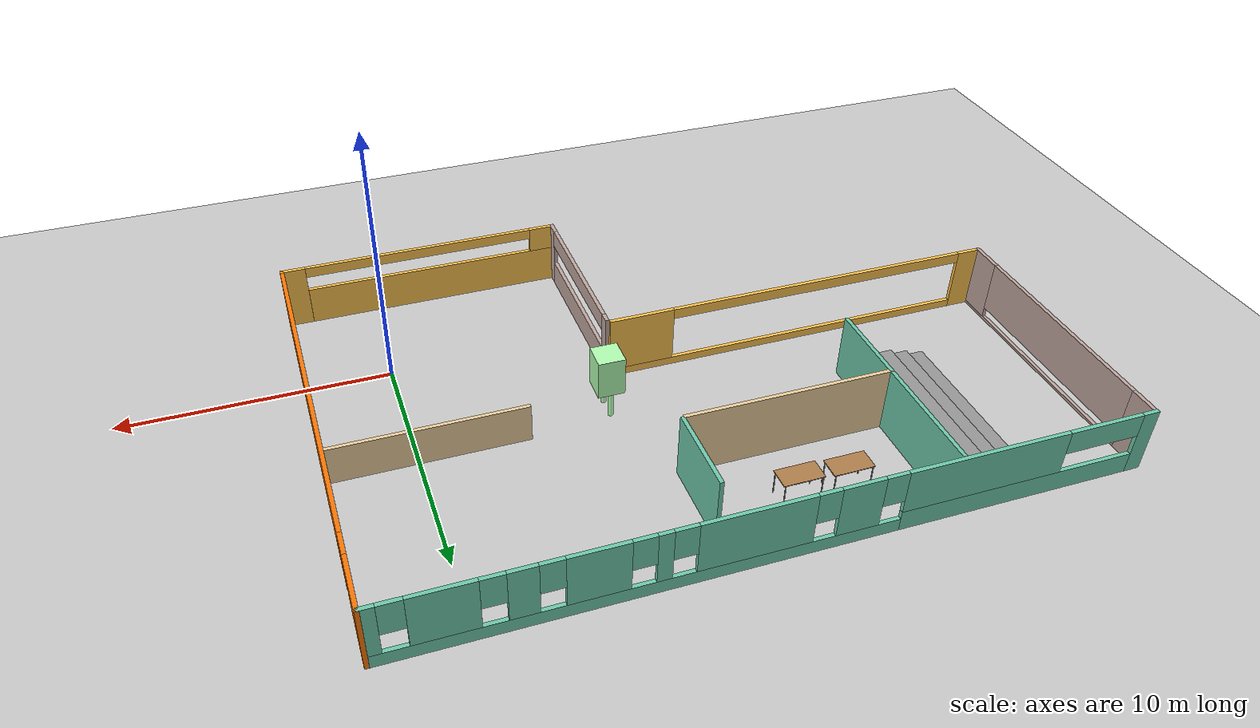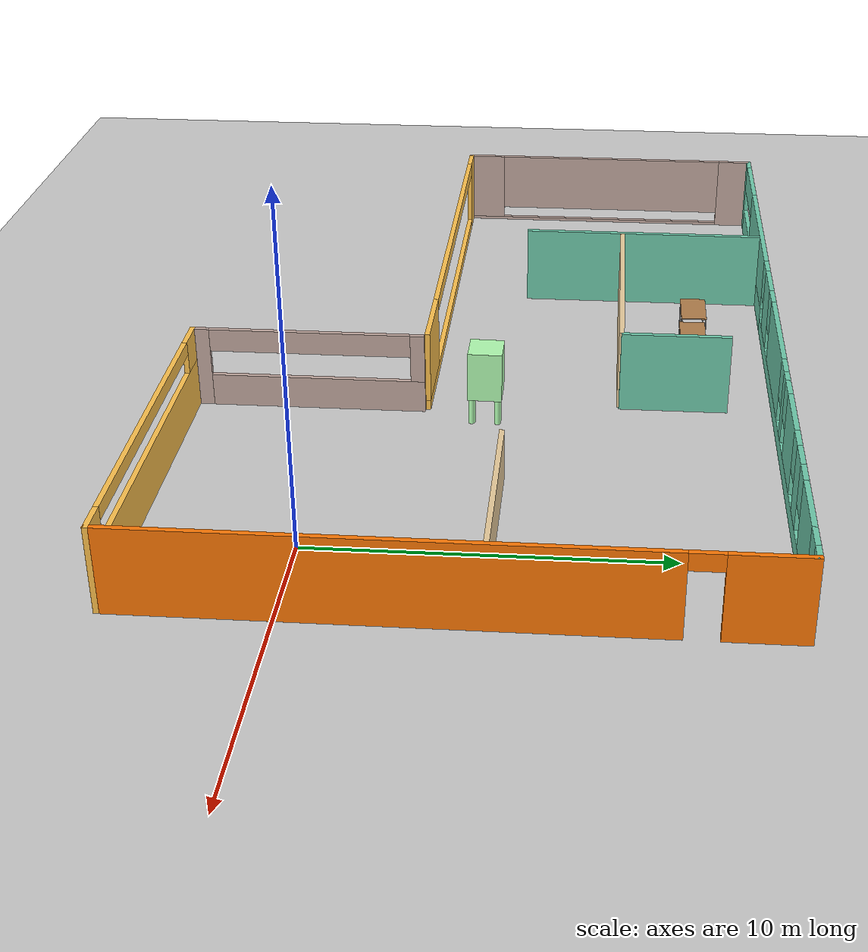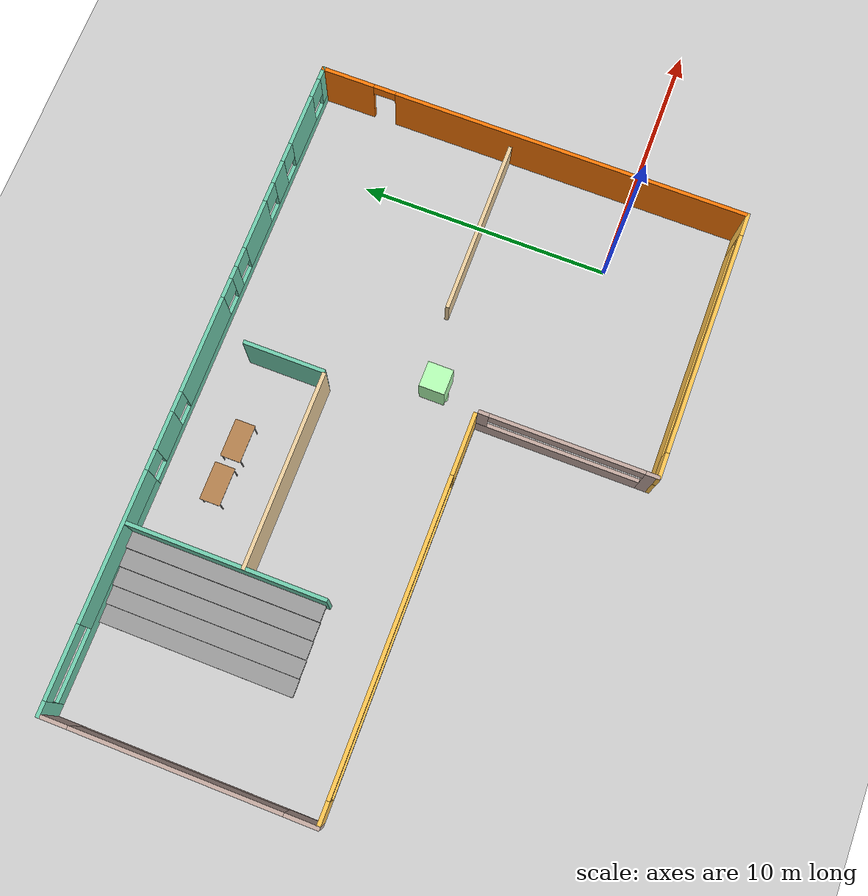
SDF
<sdf version="1.6">
 <world name="default">
  <model name="ground_plane">
   <static>1</static>
   <link name="link">
    <collision name="collision">
     <geometry><plane><normal>0 0 1</normal><size>100 100</size></plane></geometry>
     <surface><friction><ode><mu>100</mu><mu2>50</mu2></ode></friction></surface>
    </collision>
    <visual name="visual">
     <cast_shadows>0</cast_shadows>
     <geometry><plane><normal>0 0 1</normal><size>100 100</size></plane></geometry>
     <material>
      <script><uri>file://media/materials/scripts/gazebo.material</uri><name>Gazebo/Grey</name></script>
     </material>
    </visual>
   </link>
  </model>
  <model name="MyOffice">
   <pose>-9.99386 4.31006 0 0 -0 0</pose>
   <link name="Stairs_1">
    <visual name="Stairs_1_Visual_0">
     <pose>-9.15396 4.81263 0.1 0 -0 1.5708</pose>
     <geometry><box><size>7.73533 0.7 0.2</size></box></geometry>
     <material>
      <script><uri>file://media/materials/scripts/gazebo.material</uri><name>Gazebo/Grey</name></script>
      <ambient>1 1 1 1</ambient>
     </material>
     <meta><layer>0</layer></meta>
    </visual>
    <collision name="Stairs_1_Collision_0">
     <geometry><box><size>7.73533 0.7 0.2</size></box></geometry>
     <pose>-9.15396 4.81263 0.1 0 -0 1.5708</pose>
    </collision>
    <visual name="Stairs_1_Visual_1">
     <pose>-8.45396 4.81263 0.3 0 -0 1.5708</pose>
     <geometry><box><size>7.73533 0.7 0.2</size></box></geometry>
     <material>
      <script><uri>file://media/materials/scripts/gazebo.material</uri><name>Gazebo/Grey</name></script>
      <ambient>1 1 1 1</ambient>
     </material>
     <meta><layer>0</layer></meta>
    </visual>
    <collision name="Stairs_1_Collision_1">
     <geometry><box><size>7.73533 0.7 0.2</size></box></geometry>
     <pose>-8.45396 4.81263 0.3 0 -0 1.5708</pose>
    </collision>
    <visual name="Stairs_1_Visual_2">
     <pose>-7.75396 4.81263 0.5 0 -0 1.5708</pose>
     <geometry><box><size>7.73533 0.7 0.2</size></box></geometry>
     <material>
      <script><uri>file://media/materials/scripts/gazebo.material</uri><name>Gazebo/Grey</name></script>
      <ambient>1 1 1 1</ambient>
     </material>
     <meta><layer>0</layer></meta>
    </visual>
    <collision name="Stairs_1_Collision_2">
     <geometry><box><size>7.73533 0.7 0.2</size></box></geometry>
     <pose>-7.75396 4.81263 0.5 0 -0 1.5708</pose>
    </collision>
    <visual name="Stairs_1_Visual_3">
     <pose>-7.05396 4.81263 0.7 0 -0 1.5708</pose>
     <geometry><box><size>7.73533 0.7 0.2</size></box></geometry>
     <material>
      <script><uri>file://media/materials/scripts/gazebo.material</uri><name>Gazebo/Grey</name></script>
      <ambient>1 1 1 1</ambient>
     </material>
     <meta><layer>0</layer></meta>
    </visual>
    <collision name="Stairs_1_Collision_3">
     <geometry><box><size>7.73533 0.7 0.2</size></box></geometry>
     <pose>-7.05396 4.81263 0.7 0 -0 1.5708</pose>
    </collision>
    <visual name="Stairs_1_Visual_4">
     <pose>-6.35396 4.81263 0.9 0 -0 1.5708</pose>
     <geometry><box><size>7.73533 0.7 0.2</size></box></geometry>
     <material>
      <script><uri>file://media/materials/scripts/gazebo.material</uri><name>Gazebo/Grey</name></script>
      <ambient>1 1 1 1</ambient>
     </material>
     <meta><layer>0</layer></meta>
    </visual>
    <collision name="Stairs_1_Collision_4">
     <geometry><box><size>7.73533 0.7 0.2</size></box></geometry>
     <pose>-6.35396 4.81263 0.9 0 -0 1.5708</pose>
    </collision>
   </link>
   <link name="Wall_1">
    <pose>-13.175 3.5 0 0 0 -1.5708</pose>
    <visual name="Wall_1_Visual_0">
     <pose>-4.66054 0 1.25 0 -0 0</pose>
     <geometry><box><size>1.17891 0.15 2.5</size></box></geometry>
     <material>
      <script><uri>file://media/materials/scripts/gazebo.material</uri><name>Gazebo/Grey</name></script>
      <ambient>0.760784 0.662745 0.627451 1</ambient>
     </material>
     <meta><layer>0</layer></meta>
    </visual>
    <collision name="Wall_1_Collision_0">
     <geometry><box><size>1.17891 0.15 2.5</size></box></geometry>
     <pose>-4.66054 0 1.25 0 -0 0</pose>
    </collision>
    <visual name="Wall_1_Visual_1">
     <pose>0.589456 0 0.05 0 -0 0</pose>
     <geometry><box><size>9.32109 0.15 0.1</size></box></geometry>
     <material>
      <script><uri>file://media/materials/scripts/gazebo.material</uri><name>Gazebo/Grey</name></script>
      <ambient>0.760784 0.662745 0.627451 1</ambient>
     </material>
     <meta><layer>0</layer></meta>
    </visual>
    <collision name="Wall_1_Collision_1">
     <geometry><box><size>9.32109 0.15 0.1</size></box></geometry>
     <pose>0.589456 0 0.05 0 -0 0</pose>
    </collision>
    <visual name="Wall_1_Visual_2">
     <pose>4.58946 0 1.3 0 -0 0</pose>
     <geometry><box><size>1.32109 0.15 2.4</size></box></geometry>
     <material>
      <script><uri>file://media/materials/scripts/gazebo.material</uri><name>Gazebo/Grey</name></script>
      <ambient>0.760784 0.662745 0.627451 1</ambient>
     </material>
     <meta><layer>0</layer></meta>
    </visual>
    <collision name="Wall_1_Collision_2">
     <geometry><box><size>1.32109 0.15 2.4</size></box></geometry>
     <pose>4.58946 0 1.3 0 -0 0</pose>
    </collision>
    <visual name="Wall_1_Visual_3">
     <pose>-0.071087 0 1.5 0 -0 0</pose>
     <geometry><box><size>8 0.15 2</size></box></geometry>
     <material>
      <script><uri>file://media/materials/scripts/gazebo.material</uri><name>Gazebo/Grey</name></script>
      <ambient>0.760784 0.662745 0.627451 1</ambient>
     </material>
     <meta><layer>0</layer></meta>
    </visual>
    <collision name="Wall_1_Collision_3">
     <geometry><box><size>8 0.15 2</size></box></geometry>
     <pose>-0.071087 0 1.5 0 -0 0</pose>
    </collision>
   </link>
   <link name="Wall_11">
    <collision name="Wall_11_Collision">
     <geometry><box><size>7.75 0.15 2.5</size></box></geometry>
     <pose>0 0 1.25 0 -0 0</pose>
    </collision>
    <visual name="Wall_11_Visual">
     <pose>0 0 1.25 0 -0 0</pose>
     <geometry><box><size>7.75 0.15 2.5</size></box></geometry>
     <material>
      <script><uri>file://media/materials/scripts/gazebo.material</uri><name>Gazebo/Grey</name></script>
      <ambient>0.921569 0.807843 0.615686 1</ambient>
     </material>
     <meta><layer>0</layer></meta>
    </visual>
    <pose>-2.18392 4.03899 0 0 -0 0</pose>
   </link>
   <link name="Wall_13">
    <collision name="Wall_13_Collision">
     <geometry><box><size>7.25 0.15 1.5</size></box></geometry>
     <pose>0 0 0.75 0 -0 0</pose>
    </collision>
    <visual name="Wall_13_Visual">
     <pose>0 0 0.75 0 -0 0</pose>
     <geometry><box><size>7.25 0.15 1.5</size></box></geometry>
     <material>
      <script><uri>file://media/materials/scripts/gazebo.material</uri><name>Gazebo/Grey</name></script>
      <ambient>0.921569 0.807843 0.615686 1</ambient>
     </material>
     <meta><layer>0</layer></meta>
    </visual>
    <pose>9.60987 0.795259 0 0 -0 3.14159</pose>
   </link>
   <link name="Wall_15">
    <collision name="Wall_15_Collision">
     <geometry><box><size>7.75 0.15 2.5</size></box></geometry>
     <pose>0 0 1.25 0 -0 0</pose>
    </collision>
    <visual name="Wall_15_Visual">
     <pose>0 0 1.25 0 -0 0</pose>
     <geometry><box><size>7.75 0.15 2.5</size></box></geometry>
     <material>
      <script><uri>file://media/materials/scripts/gazebo.material</uri><name>Gazebo/Grey</name></script>
      <ambient>0.435294 0.796078 0.67451 1</ambient>
     </material>
     <meta><layer>0</layer></meta>
    </visual>
    <pose>-5.9943 4.72008 0 0 0 -1.5708</pose>
   </link>
   <link name="Wall_17">
    <collision name="Wall_17_Collision">
     <geometry><box><size>3.25 0.15 2.5</size></box></geometry>
     <pose>0 0 1.25 0 -0 0</pose>
    </collision>
    <visual name="Wall_17_Visual">
     <pose>0 0 1.25 0 -0 0</pose>
     <geometry><box><size>3.25 0.15 2.5</size></box></geometry>
     <material>
      <script><uri>file://media/materials/scripts/gazebo.material</uri><name>Gazebo/Grey</name></script>
      <ambient>0.435294 0.796078 0.67451 1</ambient>
     </material>
     <meta><layer>0</layer></meta>
    </visual>
    <pose>1.73138 5.6554 0 0 -0 1.5708</pose>
   </link>
   <link name="Wall_2">
    <pose>-5.5 -1.675 0 0 -0 0</pose>
    <visual name="Wall_2_Visual_0">
     <pose>-7.24406 0 1.25 0 -0 0</pose>
     <geometry><box><size>1.01187 0.15 2.5</size></box></geometry>
     <material>
      <script><uri>file://media/materials/scripts/gazebo.material</uri><name>Gazebo/Grey</name></script>
      <ambient>1 0.764706 0.305882 1</ambient>
     </material>
     <meta><layer>0</layer></meta>
    </visual>
    <collision name="Wall_2_Collision_0">
     <geometry><box><size>1.01187 0.15 2.5</size></box></geometry>
     <pose>-7.24406 0 1.25 0 -0 0</pose>
    </collision>
    <visual name="Wall_2_Visual_1">
     <pose>0.505935 0 0.15 0 -0 0</pose>
     <geometry><box><size>14.4881 0.15 0.3</size></box></geometry>
     <material>
      <script><uri>file://media/materials/scripts/gazebo.material</uri><name>Gazebo/Grey</name></script>
      <ambient>1 0.764706 0.305882 1</ambient>
     </material>
     <meta><layer>0</layer></meta>
    </visual>
    <collision name="Wall_2_Collision_1">
     <geometry><box><size>14.4881 0.15 0.3</size></box></geometry>
     <pose>0.505935 0 0.15 0 -0 0</pose>
    </collision>
    <visual name="Wall_2_Visual_2">
     <pose>6.50594 0 1.4 0 -0 0</pose>
     <geometry><box><size>2.48813 0.15 2.2</size></box></geometry>
     <material>
      <script><uri>file://media/materials/scripts/gazebo.material</uri><name>Gazebo/Grey</name></script>
      <ambient>1 0.764706 0.305882 1</ambient>
     </material>
     <meta><layer>0</layer></meta>
    </visual>
    <collision name="Wall_2_Collision_2">
     <geometry><box><size>2.48813 0.15 2.2</size></box></geometry>
     <pose>6.50594 0 1.4 0 -0 0</pose>
    </collision>
    <visual name="Wall_2_Visual_3">
     <pose>-0.738131 0 2.3 0 -0 0</pose>
     <geometry><box><size>12 0.15 0.4</size></box></geometry>
     <material>
      <script><uri>file://media/materials/scripts/gazebo.material</uri><name>Gazebo/Grey</name></script>
      <ambient>1 0.764706 0.305882 1</ambient>
     </material>
     <meta><layer>0</layer></meta>
    </visual>
    <collision name="Wall_2_Collision_3">
     <geometry><box><size>12 0.15 0.4</size></box></geometry>
     <pose>-0.738131 0 2.3 0 -0 0</pose>
    </collision>
   </link>
   <link name="Wall_4">
    <pose>0 8.675 0 0 -0 0</pose>
    <visual name="Wall_4_Visual_0">
     <pose>-12.9493 0 1.25 0 -0 0</pose>
     <geometry><box><size>0.601453 0.15 2.5</size></box></geometry>
     <material>
      <script><uri>file://media/materials/scripts/gazebo.material</uri><name>Gazebo/Grey</name></script>
      <ambient>0.435294 0.796078 0.67451 1</ambient>
     </material>
     <meta><layer>0</layer></meta>
    </visual>
    <collision name="Wall_4_Collision_0">
     <geometry><box><size>0.601453 0.15 2.5</size></box></geometry>
     <pose>-12.9493 0 1.25 0 -0 0</pose>
    </collision>
    <visual name="Wall_4_Visual_1">
     <pose>-8.30819 0 0.4 0 -0 0</pose>
     <geometry><box><size>8.68071 0.15 0.8</size></box></geometry>
     <material>
      <script><uri>file://media/materials/scripts/gazebo.material</uri><name>Gazebo/Grey</name></script>
      <ambient>0.435294 0.796078 0.67451 1</ambient>
     </material>
     <meta><layer>0</layer></meta>
    </visual>
    <collision name="Wall_4_Collision_1">
     <geometry><box><size>8.68071 0.15 0.8</size></box></geometry>
     <pose>-8.30819 0 0.4 0 -0 0</pose>
    </collision>
    <visual name="Wall_4_Visual_2">
     <pose>4.64108 0 0.25 0 -0 0</pose>
     <geometry><box><size>17.2178 0.15 0.5</size></box></geometry>
     <material>
      <script><uri>file://media/materials/scripts/gazebo.material</uri><name>Gazebo/Grey</name></script>
      <ambient>0.435294 0.796078 0.67451 1</ambient>
     </material>
     <meta><layer>0</layer></meta>
    </visual>
    <collision name="Wall_4_Collision_2">
     <geometry><box><size>17.2178 0.15 0.5</size></box></geometry>
     <pose>4.64108 0 0.25 0 -0 0</pose>
    </collision>
    <visual name="Wall_4_Visual_3">
     <pose>-2.41009 0 1.5 0 -0 0</pose>
     <geometry><box><size>1.51549 0.15 2</size></box></geometry>
     <material>
      <script><uri>file://media/materials/scripts/gazebo.material</uri><name>Gazebo/Grey</name></script>
      <ambient>0.435294 0.796078 0.67451 1</ambient>
     </material>
     <meta><layer>0</layer></meta>
    </visual>
    <collision name="Wall_4_Collision_3">
     <geometry><box><size>1.51549 0.15 2</size></box></geometry>
     <pose>-2.41009 0 1.5 0 -0 0</pose>
    </collision>
    <visual name="Wall_4_Visual_4">
     <pose>1.09786 0 1.5 0 -0 0</pose>
     <geometry><box><size>3.90042 0.15 2</size></box></geometry>
     <material>
      <script><uri>file://media/materials/scripts/gazebo.material</uri><name>Gazebo/Grey</name></script>
      <ambient>0.435294 0.796078 0.67451 1</ambient>
     </material>
     <meta><layer>0</layer></meta>
    </visual>
    <collision name="Wall_4_Collision_4">
     <geometry><box><size>3.90042 0.15 2</size></box></geometry>
     <pose>1.09786 0 1.5 0 -0 0</pose>
    </collision>
    <visual name="Wall_4_Visual_5">
     <pose>4.10318 0 1.5 0 -0 0</pose>
     <geometry><box><size>0.510201 0.15 2</size></box></geometry>
     <material>
      <script><uri>file://media/materials/scripts/gazebo.material</uri><name>Gazebo/Grey</name></script>
      <ambient>0.435294 0.796078 0.67451 1</ambient>
     </material>
     <meta><layer>0</layer></meta>
    </visual>
    <collision name="Wall_4_Collision_5">
     <geometry><box><size>0.510201 0.15 2</size></box></geometry>
     <pose>4.10318 0 1.5 0 -0 0</pose>
    </collision>
    <visual name="Wall_4_Visual_6">
     <pose>6.17414 0 1.5 0 -0 0</pose>
     <geometry><box><size>2.03172 0.15 2</size></box></geometry>
     <material>
      <script><uri>file://media/materials/scripts/gazebo.material</uri><name>Gazebo/Grey</name></script>
      <ambient>0.435294 0.796078 0.67451 1</ambient>
     </material>
     <meta><layer>0</layer></meta>
    </visual>
    <collision name="Wall_4_Collision_6">
     <geometry><box><size>2.03172 0.15 2</size></box></geometry>
     <pose>6.17414 0 1.5 0 -0 0</pose>
    </collision>
    <visual name="Wall_4_Visual_7">
     <pose>8.46963 0 1.5 0 -0 0</pose>
     <geometry><box><size>0.959263 0.15 2</size></box></geometry>
     <material>
      <script><uri>file://media/materials/scripts/gazebo.material</uri><name>Gazebo/Grey</name></script>
      <ambient>0.435294 0.796078 0.67451 1</ambient>
     </material>
     <meta><layer>0</layer></meta>
    </visual>
    <collision name="Wall_4_Collision_7">
     <geometry><box><size>0.959263 0.15 2</size></box></geometry>
     <pose>8.46963 0 1.5 0 -0 0</pose>
    </collision>
    <visual name="Wall_4_Visual_8">
     <pose>10.8153 0 1.5 0 -0 0</pose>
     <geometry><box><size>2.1321 0.15 2</size></box></geometry>
     <material>
      <script><uri>file://media/materials/scripts/gazebo.material</uri><name>Gazebo/Grey</name></script>
      <ambient>0.435294 0.796078 0.67451 1</ambient>
     </material>
     <meta><layer>0</layer></meta>
    </visual>
    <collision name="Wall_4_Collision_8">
     <geometry><box><size>2.1321 0.15 2</size></box></geometry>
     <pose>10.8153 0 1.5 0 -0 0</pose>
    </collision>
    <visual name="Wall_4_Visual_9">
     <pose>12.9657 0 1.5 0 -0 0</pose>
     <geometry><box><size>0.568637 0.15 2</size></box></geometry>
     <material>
      <script><uri>file://media/materials/scripts/gazebo.material</uri><name>Gazebo/Grey</name></script>
      <ambient>0.435294 0.796078 0.67451 1</ambient>
     </material>
     <meta><layer>0</layer></meta>
    </visual>
    <collision name="Wall_4_Collision_9">
     <geometry><box><size>0.568637 0.15 2</size></box></geometry>
     <pose>12.9657 0 1.5 0 -0 0</pose>
    </collision>
    <visual name="Wall_4_Visual_10">
     <pose>-6.90819 0 1.65 0 -0 0</pose>
     <geometry><box><size>5.88071 0.15 1.7</size></box></geometry>
     <material>
      <script><uri>file://media/materials/scripts/gazebo.material</uri><name>Gazebo/Grey</name></script>
      <ambient>0.435294 0.796078 0.67451 1</ambient>
     </material>
     <meta><layer>0</layer></meta>
    </visual>
    <collision name="Wall_4_Collision_10">
     <geometry><box><size>5.88071 0.15 1.7</size></box></geometry>
     <pose>-6.90819 0 1.65 0 -0 0</pose>
    </collision>
    <visual name="Wall_4_Visual_11">
     <pose>-1.25235 0 1.9 0 -0 0</pose>
     <geometry><box><size>0.8 0.15 1.2</size></box></geometry>
     <material>
      <script><uri>file://media/materials/scripts/gazebo.material</uri><name>Gazebo/Grey</name></script>
      <ambient>0.435294 0.796078 0.67451 1</ambient>
     </material>
     <meta><layer>0</layer></meta>
    </visual>
    <collision name="Wall_4_Collision_11">
     <geometry><box><size>0.8 0.15 1.2</size></box></geometry>
     <pose>-1.25235 0 1.9 0 -0 0</pose>
    </collision>
    <visual name="Wall_4_Visual_12">
     <pose>3.44807 0 1.9 0 -0 0</pose>
     <geometry><box><size>0.8 0.15 1.2</size></box></geometry>
     <material>
      <script><uri>file://media/materials/scripts/gazebo.material</uri><name>Gazebo/Grey</name></script>
      <ambient>0.435294 0.796078 0.67451 1</ambient>
     </material>
     <meta><layer>0</layer></meta>
    </visual>
    <collision name="Wall_4_Collision_12">
     <geometry><box><size>0.8 0.15 1.2</size></box></geometry>
     <pose>3.44807 0 1.9 0 -0 0</pose>
    </collision>
    <visual name="Wall_4_Visual_13">
     <pose>4.75828 0 1.9 0 -0 0</pose>
     <geometry><box><size>0.8 0.15 1.2</size></box></geometry>
     <material>
      <script><uri>file://media/materials/scripts/gazebo.material</uri><name>Gazebo/Grey</name></script>
      <ambient>0.435294 0.796078 0.67451 1</ambient>
     </material>
     <meta><layer>0</layer></meta>
    </visual>
    <collision name="Wall_4_Collision_13">
     <geometry><box><size>0.8 0.15 1.2</size></box></geometry>
     <pose>4.75828 0 1.9 0 -0 0</pose>
    </collision>
    <visual name="Wall_4_Visual_14">
     <pose>7.59 0 1.9 0 -0 0</pose>
     <geometry><box><size>0.8 0.15 1.2</size></box></geometry>
     <material>
      <script><uri>file://media/materials/scripts/gazebo.material</uri><name>Gazebo/Grey</name></script>
      <ambient>0.435294 0.796078 0.67451 1</ambient>
     </material>
     <meta><layer>0</layer></meta>
    </visual>
    <collision name="Wall_4_Collision_14">
     <geometry><box><size>0.8 0.15 1.2</size></box></geometry>
     <pose>7.59 0 1.9 0 -0 0</pose>
    </collision>
    <visual name="Wall_4_Visual_15">
     <pose>9.34926 0 1.9 0 -0 0</pose>
     <geometry><box><size>0.8 0.15 1.2</size></box></geometry>
     <material>
      <script><uri>file://media/materials/scripts/gazebo.material</uri><name>Gazebo/Grey</name></script>
      <ambient>0.435294 0.796078 0.67451 1</ambient>
     </material>
     <meta><layer>0</layer></meta>
    </visual>
    <collision name="Wall_4_Collision_15">
     <geometry><box><size>0.8 0.15 1.2</size></box></geometry>
     <pose>9.34926 0 1.9 0 -0 0</pose>
    </collision>
    <visual name="Wall_4_Visual_16">
     <pose>12.2814 0 1.9 0 -0 0</pose>
     <geometry><box><size>0.8 0.15 1.2</size></box></geometry>
     <material>
      <script><uri>file://media/materials/scripts/gazebo.material</uri><name>Gazebo/Grey</name></script>
      <ambient>0.435294 0.796078 0.67451 1</ambient>
     </material>
     <meta><layer>0</layer></meta>
    </visual>
    <collision name="Wall_4_Collision_16">
     <geometry><box><size>0.8 0.15 1.2</size></box></geometry>
     <pose>12.2814 0 1.9 0 -0 0</pose>
    </collision>
    <visual name="Wall_4_Visual_17">
     <pose>-3.56784 0 1.9 0 -0 0</pose>
     <geometry><box><size>0.8 0.15 1.2</size></box></geometry>
     <material>
      <script><uri>file://media/materials/scripts/gazebo.material</uri><name>Gazebo/Grey</name></script>
      <ambient>0.435294 0.796078 0.67451 1</ambient>
     </material>
     <meta><layer>0</layer></meta>
    </visual>
    <collision name="Wall_4_Collision_17">
     <geometry><box><size>0.8 0.15 1.2</size></box></geometry>
     <pose>-3.56784 0 1.9 0 -0 0</pose>
    </collision>
    <visual name="Wall_4_Visual_18">
     <pose>-11.2485 0 2.05 0 -0 0</pose>
     <geometry><box><size>2.8 0.15 0.9</size></box></geometry>
     <material>
      <script><uri>file://media/materials/scripts/gazebo.material</uri><name>Gazebo/Grey</name></script>
      <ambient>0.435294 0.796078 0.67451 1</ambient>
     </material>
     <meta><layer>0</layer></meta>
    </visual>
    <collision name="Wall_4_Collision_18">
     <geometry><box><size>2.8 0.15 0.9</size></box></geometry>
     <pose>-11.2485 0 2.05 0 -0 0</pose>
    </collision>
   </link>
   <link name="Wall_5">
    <pose>13.175 0 0 0 0 -1.5708</pose>
    <visual name="Wall_5_Visual_0">
     <pose>-7.64597 0 1.25 0 -0 0</pose>
     <geometry><box><size>2.20807 0.15 2.5</size></box></geometry>
     <material>
      <script><uri>file://media/materials/scripts/gazebo.material</uri><name>Gazebo/Grey</name></script>
      <ambient>0.996078 0.47451 0.0196078 1</ambient>
     </material>
     <meta><layer>0</layer></meta>
    </visual>
    <collision name="Wall_5_Collision_0">
     <geometry><box><size>2.20807 0.15 2.5</size></box></geometry>
     <pose>-7.64597 0 1.25 0 -0 0</pose>
    </collision>
    <visual name="Wall_5_Visual_1">
     <pose>1.55403 0 1.25 0 -0 0</pose>
     <geometry><box><size>14.3919 0.15 2.5</size></box></geometry>
     <material>
      <script><uri>file://media/materials/scripts/gazebo.material</uri><name>Gazebo/Grey</name></script>
      <ambient>0.996078 0.47451 0.0196078 1</ambient>
     </material>
     <meta><layer>0</layer></meta>
    </visual>
    <collision name="Wall_5_Collision_1">
     <geometry><box><size>14.3919 0.15 2.5</size></box></geometry>
     <pose>1.55403 0 1.25 0 -0 0</pose>
    </collision>
    <visual name="Wall_5_Visual_2">
     <pose>-6.09193 0 2.25 0 -0 0</pose>
     <geometry><box><size>0.9 0.15 0.5</size></box></geometry>
     <material>
      <script><uri>file://media/materials/scripts/gazebo.material</uri><name>Gazebo/Grey</name></script>
      <ambient>0.996078 0.47451 0.0196078 1</ambient>
     </material>
     <meta><layer>0</layer></meta>
    </visual>
    <collision name="Wall_5_Collision_2">
     <geometry><box><size>0.9 0.15 0.5</size></box></geometry>
     <pose>-6.09193 0 2.25 0 -0 0</pose>
    </collision>
   </link>
   <link name="Wall_7">
    <pose>7.75 -8.675 0 0 -0 3.14159</pose>
    <visual name="Wall_7_Visual_0">
     <pose>-5.02514 0 1.25 0 -0 0</pose>
     <geometry><box><size>0.949727 0.15 2.5</size></box></geometry>
     <material>
      <script><uri>file://media/materials/scripts/gazebo.material</uri><name>Gazebo/Grey</name></script>
      <ambient>1 0.764706 0.305882 1</ambient>
     </material>
     <meta><layer>0</layer></meta>
    </visual>
    <collision name="Wall_7_Collision_0">
     <geometry><box><size>0.949727 0.15 2.5</size></box></geometry>
     <pose>-5.02514 0 1.25 0 -0 0</pose>
    </collision>
    <visual name="Wall_7_Visual_1">
     <pose>0.474864 0 0.75 0 -0 0</pose>
     <geometry><box><size>10.0503 0.15 1.5</size></box></geometry>
     <material>
      <script><uri>file://media/materials/scripts/gazebo.material</uri><name>Gazebo/Grey</name></script>
      <ambient>1 0.764706 0.305882 1</ambient>
     </material>
     <meta><layer>0</layer></meta>
    </visual>
    <collision name="Wall_7_Collision_1">
     <geometry><box><size>10.0503 0.15 1.5</size></box></geometry>
     <pose>0.474864 0 0.75 0 -0 0</pose>
    </collision>
    <visual name="Wall_7_Visual_2">
     <pose>4.97486 0 2 0 -0 0</pose>
     <geometry><box><size>1.05027 0.15 1</size></box></geometry>
     <material>
      <script><uri>file://media/materials/scripts/gazebo.material</uri><name>Gazebo/Grey</name></script>
      <ambient>1 0.764706 0.305882 1</ambient>
     </material>
     <meta><layer>0</layer></meta>
    </visual>
    <collision name="Wall_7_Collision_2">
     <geometry><box><size>1.05027 0.15 1</size></box></geometry>
     <pose>4.97486 0 2 0 -0 0</pose>
    </collision>
    <visual name="Wall_7_Visual_3">
     <pose>-0.050273 0 2.3 0 -0 0</pose>
     <geometry><box><size>9 0.15 0.4</size></box></geometry>
     <material>
      <script><uri>file://media/materials/scripts/gazebo.material</uri><name>Gazebo/Grey</name></script>
      <ambient>1 0.764706 0.305882 1</ambient>
     </material>
     <meta><layer>0</layer></meta>
    </visual>
    <collision name="Wall_7_Collision_3">
     <geometry><box><size>9 0.15 0.4</size></box></geometry>
     <pose>-0.050273 0 2.3 0 -0 0</pose>
    </collision>
   </link>
   <link name="Wall_8">
    <pose>2.325 -5.25 0 0 -0 1.5708</pose>
    <visual name="Wall_8_Visual_0">
     <pose>-3.21189 0 1.25 0 -0 0</pose>
     <geometry><box><size>0.576225 0.15 2.5</size></box></geometry>
     <material>
      <script><uri>file://media/materials/scripts/gazebo.material</uri><name>Gazebo/Grey</name></script>
      <ambient>0.760784 0.662745 0.627451 1</ambient>
     </material>
     <meta><layer>0</layer></meta>
    </visual>
    <collision name="Wall_8_Collision_0">
     <geometry><box><size>0.576225 0.15 2.5</size></box></geometry>
     <pose>-3.21189 0 1.25 0 -0 0</pose>
    </collision>
    <visual name="Wall_8_Visual_1">
     <pose>0.288113 0 0.5 0 -0 0</pose>
     <geometry><box><size>6.42378 0.15 1</size></box></geometry>
     <material>
      <script><uri>file://media/materials/scripts/gazebo.material</uri><name>Gazebo/Grey</name></script>
      <ambient>0.760784 0.662745 0.627451 1</ambient>
     </material>
     <meta><layer>0</layer></meta>
    </visual>
    <collision name="Wall_8_Collision_1">
     <geometry><box><size>6.42378 0.15 1</size></box></geometry>
     <pose>0.288113 0 0.5 0 -0 0</pose>
    </collision>
    <visual name="Wall_8_Visual_2">
     <pose>3.28811 0 1.75 0 -0 0</pose>
     <geometry><box><size>0.423775 0.15 1.5</size></box></geometry>
     <material>
      <script><uri>file://media/materials/scripts/gazebo.material</uri><name>Gazebo/Grey</name></script>
      <ambient>0.760784 0.662745 0.627451 1</ambient>
     </material>
     <meta><layer>0</layer></meta>
    </visual>
    <collision name="Wall_8_Collision_2">
     <geometry><box><size>0.423775 0.15 1.5</size></box></geometry>
     <pose>3.28811 0 1.75 0 -0 0</pose>
    </collision>
    <visual name="Wall_8_Visual_3">
     <pose>0.076225 0 2.15 0 -0 0</pose>
     <geometry><box><size>6 0.15 0.7</size></box></geometry>
     <material>
      <script><uri>file://media/materials/scripts/gazebo.material</uri><name>Gazebo/Grey</name></script>
      <ambient>0.760784 0.662745 0.627451 1</ambient>
     </material>
     <meta><layer>0</layer></meta>
    </visual>
    <collision name="Wall_8_Collision_3">
     <geometry><box><size>6 0.15 0.7</size></box></geometry>
     <pose>0.076225 0 2.15 0 -0 0</pose>
    </collision>
   </link>
   <static>1</static>
  </model>
  <model name="table_8">
   <static>1</static>
   <link name="link">
    <collision name="surface">
     <pose>0 0 1 0 -0 0</pose>
     <geometry><box><size>1.5 0.8 0.03</size></box></geometry>
     <surface><friction><ode><mu>0.6</mu><mu2>0.6</mu2></ode></friction></surface>
    </collision>
    <visual name="visual1">
     <pose>0 0 1 0 -0 0</pose>
     <geometry><box><size>1.5 0.8 0.03</size></box></geometry>
     <material>
      <script><uri>file://media/materials/scripts/gazebo.material</uri><name>Gazebo/Wood</name></script>
     </material>
    </visual>
    <collision name="front_left_leg">
     <pose>0.68 0.38 0.5 0 -0 0</pose>
     <geometry><cylinder><radius>0.02</radius><length>1</length></cylinder></geometry>
    </collision>
    <visual name="front_left_leg">
     <pose>0.68 0.38 0.5 0 -0 0</pose>
     <geometry><cylinder><radius>0.02</radius><length>1</length></cylinder></geometry>
     <material>
      <script><uri>file://media/materials/scripts/gazebo.material</uri><name>Gazebo/Grey</name></script>
     </material>
    </visual>
    <collision name="front_right_leg">
     <pose>0.68 -0.38 0.5 0 -0 0</pose>
     <geometry><cylinder><radius>0.02</radius><length>1</length></cylinder></geometry>
    </collision>
    <visual name="front_right_leg">
     <pose>0.68 -0.38 0.5 0 -0 0</pose>
     <geometry><cylinder><radius>0.02</radius><length>1</length></cylinder></geometry>
     <material>
      <script><uri>file://media/materials/scripts/gazebo.material</uri><name>Gazebo/Grey</name></script>
     </material>
    </visual>
    <collision name="back_right_leg">
     <pose>-0.68 -0.38 0.5 0 -0 0</pose>
     <geometry><cylinder><radius>0.02</radius><length>1</length></cylinder></geometry>
    </collision>
    <visual name="back_right_leg">
     <pose>-0.68 -0.38 0.5 0 -0 0</pose>
     <geometry><cylinder><radius>0.02</radius><length>1</length></cylinder></geometry>
     <material>
      <script><uri>file://media/materials/scripts/gazebo.material</uri><name>Gazebo/Grey</name></script>
     </material>
    </visual>
    <collision name="back_left_leg">
     <pose>-0.68 0.38 0.5 0 -0 0</pose>
     <geometry><cylinder><radius>0.02</radius><length>1</length></cylinder></geometry>
    </collision>
    <visual name="back_left_leg">
     <pose>-0.68 0.38 0.5 0 -0 0</pose>
     <geometry><cylinder><radius>0.02</radius><length>1</length></cylinder></geometry>
     <material>
      <script><uri>file://media/materials/scripts/gazebo.material</uri><name>Gazebo/Grey</name></script>
     </material>
    </visual>
   </link>
   <pose>-13.3277 10.6977 0 0 -0 0</pose>
  </model>
  <model name="table_9">
   <static>1</static>
   <link name="link">
    <collision name="surface">
     <pose>0 0 1 0 -0 0</pose>
     <geometry><box><size>1.5 0.8 0.03</size></box></geometry>
     <surface><friction><ode><mu>0.6</mu><mu2>0.6</mu2></ode></friction></surface>
    </collision>
    <visual name="visual1">
     <pose>0 0 1 0 -0 0</pose>
     <geometry><box><size>1.5 0.8 0.03</size></box></geometry>
     <material>
      <script><uri>file://media/materials/scripts/gazebo.material</uri><name>Gazebo/Wood</name></script>
     </material>
    </visual>
    <collision name="front_left_leg">
     <pose>0.68 0.38 0.5 0 -0 0</pose>
     <geometry><cylinder><radius>0.02</radius><length>1</length></cylinder></geometry>
    </collision>
    <visual name="front_left_leg">
     <pose>0.68 0.38 0.5 0 -0 0</pose>
     <geometry><cylinder><radius>0.02</radius><length>1</length></cylinder></geometry>
     <material>
      <script><uri>file://media/materials/scripts/gazebo.material</uri><name>Gazebo/Grey</name></script>
     </material>
    </visual>
    <collision name="front_right_leg">
     <pose>0.68 -0.38 0.5 0 -0 0</pose>
     <geometry><cylinder><radius>0.02</radius><length>1</length></cylinder></geometry>
    </collision>
    <visual name="front_right_leg">
     <pose>0.68 -0.38 0.5 0 -0 0</pose>
     <geometry><cylinder><radius>0.02</radius><length>1</length></cylinder></geometry>
     <material>
      <script><uri>file://media/materials/scripts/gazebo.material</uri><name>Gazebo/Grey</name></script>
     </material>
    </visual>
    <collision name="back_right_leg">
     <pose>-0.68 -0.38 0.5 0 -0 0</pose>
     <geometry><cylinder><radius>0.02</radius><length>1</length></cylinder></geometry>
    </collision>
    <visual name="back_right_leg">
     <pose>-0.68 -0.38 0.5 0 -0 0</pose>
     <geometry><cylinder><radius>0.02</radius><length>1</length></cylinder></geometry>
     <material>
      <script><uri>file://media/materials/scripts/gazebo.material</uri><name>Gazebo/Grey</name></script>
     </material>
    </visual>
    <collision name="back_left_leg">
     <pose>-0.68 0.38 0.5 0 -0 0</pose>
     <geometry><cylinder><radius>0.02</radius><length>1</length></cylinder></geometry>
    </collision>
    <visual name="back_left_leg">
     <pose>-0.68 0.38 0.5 0 -0 0</pose>
     <geometry><cylinder><radius>0.02</radius><length>1</length></cylinder></geometry>
     <material>
      <script><uri>file://media/materials/scripts/gazebo.material</uri><name>Gazebo/Grey</name></script>
     </material>
    </visual>
   </link>
   <pose>-11.5508 10.6229 0 0 -0 0</pose>
  </model>
  <model name="NewRobot">
   <link name="link_0">
    <pose>0.006667 0.013333 0.833333 0 -0 0</pose>
    <inertial>
     <mass>1</mass>
     <inertia>
      <ixx>0.166667</ixx>
      <ixy>0</ixy>
      <ixz>0</ixz>
      <iyy>0.166667</iyy>
      <iyz>0</iyz>
      <izz>0.166667</izz>
     </inertia>
    </inertial>
    <visual name="visual">
     <geometry><box><size>1 1 1.5</size></box></geometry>
     <material>
      <lighting>1</lighting>
      <script><uri>file://media/materials/scripts/gazebo.material</uri><name>Gazebo/Grey</name></script>
      <shader type="pixel"><normal_map>__default__</normal_map></shader>
      <ambient>0.3 0.3 0.3 1</ambient>
      <diffuse>0.7 1 0.7 1</diffuse>
      <specular>0.01 1 0.01 1</specular>
      <emissive>0 0 0 1</emissive>
     </material>
    </visual>
    <collision name="collision">
     <geometry><box><size>1 1 1.5</size></box></geometry>
     <surface>
      <friction>
       <ode><mu>1</mu><mu2>1</mu2><fdir1>0 0 0</fdir1><slip1>0</slip1><slip2>0</slip2></ode>
       <torsional>
        <coefficient>1</coefficient>
        <patch_radius>0</patch_radius>
        <surface_radius>0</surface_radius>
        <use_patch_radius>1</use_patch_radius>
        <ode><slip>0</slip></ode>
       </torsional>
      </friction>
      <bounce><restitution_coefficient>0</restitution_coefficient><threshold>1e+06</threshold></bounce>
      <contact>
       <collide_without_contact>0</collide_without_contact>
       <collide_without_contact_bitmask>1</collide_without_contact_bitmask>
       <collide_bitmask>1</collide_bitmask>
       <ode>
        <soft_cfm>0</soft_cfm>
        <soft_erp>0.2</soft_erp>
        <kp>1e+13</kp>
        <kd>1</kd>
        <max_vel>0.01</max_vel>
        <min_depth>0</min_depth>
       </ode>
       <bullet>
        <split_impulse>1</split_impulse>
        <split_impulse_penetration_threshold>-0.01</split_impulse_penetration_threshold>
        <soft_cfm>0</soft_cfm>
        <soft_erp>0.2</soft_erp>
        <kp>1e+13</kp>
        <kd>1</kd>
       </bullet>
      </contact>
     </surface>
    </collision>
   </link>
   <link name="link_1">
    <pose>-0.013333 0.373333 -0.416667 0 -0 0</pose>
    <inertial>
     <mass>1</mass>
     <inertia><ixx>0.145833</ixx><ixy>0</ixy><ixz>0</ixz><iyy>0.145833</iyy><iyz>0</iyz><izz>0.125</izz></inertia>
    </inertial>
    <visual name="visual">
     <geometry><cylinder><radius>0.1</radius><length>1</length></cylinder></geometry>
     <material>
      <lighting>1</lighting>
      <script><uri>file://media/materials/scripts/gazebo.material</uri><name>Gazebo/Grey</name></script>
      <shader type="pixel"><normal_map>__default__</normal_map></shader>
      <ambient>0.3 0.3 0.7 1</ambient>
      <diffuse>0.7 1 0.7 1</diffuse>
      <specular>0.01 1 0.5 1</specular>
      <emissive>0 1 0 1</emissive>
     </material>
    </visual>
    <collision name="collision">
     <geometry><cylinder><radius>0.1</radius><length>1</length></cylinder></geometry>
     <surface>
      <friction>
       <ode><mu>1</mu><mu2>1</mu2><fdir1>0 0 0</fdir1><slip1>0</slip1><slip2>0</slip2></ode>
       <torsional>
        <coefficient>1</coefficient>
        <patch_radius>0</patch_radius>
        <surface_radius>0</surface_radius>
        <use_patch_radius>1</use_patch_radius>
        <ode><slip>0</slip></ode>
       </torsional>
      </friction>
      <bounce><restitution_coefficient>0</restitution_coefficient><threshold>1e+06</threshold></bounce>
      <contact>
       <collide_without_contact>0</collide_without_contact>
       <collide_without_contact_bitmask>1</collide_without_contact_bitmask>
       <collide_bitmask>1</collide_bitmask>
       <ode>
        <soft_cfm>0</soft_cfm>
        <soft_erp>0.2</soft_erp>
        <kp>1e+13</kp>
        <kd>1</kd>
        <max_vel>0.01</max_vel>
        <min_depth>0</min_depth>
       </ode>
       <bullet>
        <split_impulse>1</split_impulse>
        <split_impulse_penetration_threshold>-0.01</split_impulse_penetration_threshold>
        <soft_cfm>0</soft_cfm>
        <soft_erp>0.2</soft_erp>
        <kp>1e+13</kp>
        <kd>1</kd>
       </bullet>
      </contact>
     </surface>
    </collision>
   </link>
   <link name="link_1_clone">
    <pose>0.006667 -0.386667 -0.416667 0 -0 0</pose>
    <inertial>
     <mass>1</mass>
     <inertia><ixx>0.145833</ixx><ixy>0</ixy><ixz>0</ixz><iyy>0.145833</iyy><iyz>0</iyz><izz>0.125</izz></inertia>
    </inertial>
    <visual name="visual">
     <geometry><cylinder><radius>0.1</radius><length>1</length></cylinder></geometry>
     <material>
      <lighting>1</lighting>
      <script><uri>file://media/materials/scripts/gazebo.material</uri><name>Gazebo/Grey</name></script>
      <shader type="pixel"><normal_map>__default__</normal_map></shader>
      <ambient>0.3 0.3 0.7 1</ambient>
      <diffuse>0.7 1 0.7 1</diffuse>
      <specular>0.01 1 0.5 1</specular>
      <emissive>0 0 0 1</emissive>
     </material>
    </visual>
    <collision name="collision">
     <geometry><cylinder><radius>0.1</radius><length>1</length></cylinder></geometry>
     <surface>
      <friction>
       <ode><mu>1</mu><mu2>1</mu2><fdir1>0 0 0</fdir1><slip1>0</slip1><slip2>0</slip2></ode>
       <torsional>
        <coefficient>1</coefficient>
        <patch_radius>0</patch_radius>
        <surface_radius>0</surface_radius>
        <use_patch_radius>1</use_patch_radius>
        <ode><slip>0</slip></ode>
       </torsional>
      </friction>
      <bounce><restitution_coefficient>0</restitution_coefficient><threshold>1e+06</threshold></bounce>
      <contact>
       <collide_without_contact>0</collide_without_contact>
       <collide_without_contact_bitmask>1</collide_without_contact_bitmask>
       <collide_bitmask>1</collide_bitmask>
       <ode>
        <soft_cfm>0</soft_cfm>
        <soft_erp>0.2</soft_erp>
        <kp>1e+13</kp>
        <kd>1</kd>
        <max_vel>0.01</max_vel>
        <min_depth>0</min_depth>
       </ode>
       <bullet>
        <split_impulse>1</split_impulse>
        <split_impulse_penetration_threshold>-0.01</split_impulse_penetration_threshold>
        <soft_cfm>0</soft_cfm>
        <soft_erp>0.2</soft_erp>
        <kp>1e+13</kp>
        <kd>1</kd>
       </bullet>
      </contact>
     </surface>
    </collision>
   </link>
   <joint name="link_0_JOINT_0" type="revolute">
    <parent>link_0</parent>
    <child>link_1</child>
    <axis>
     <xyz>1 0 0</xyz>
     <use_parent_model_frame>0</use_parent_model_frame>
     <limit>
      <lower>-1.79769e+308</lower>
      <upper>1.79769e+308</upper>
      <effort>-1</effort>
      <velocity>-1</velocity>
     </limit>
     <dynamics>
      <spring_reference>0</spring_reference>
      <spring_stiffness>0</spring_stiffness>
      <damping>0</damping>
      <friction>0</friction>
     </dynamics>
    </axis>
    <physics>
     <ode><limit><cfm>0</cfm><erp>0.2</erp></limit><suspension><cfm>0</cfm><erp>0.2</erp></suspension></ode>
    </physics>
   </joint>
   <joint name="link_0_JOINT_1" type="revolute">
    <parent>link_0</parent>
    <child>link_1_clone</child>
    <axis>
     <xyz>1 0 0</xyz>
     <use_parent_model_frame>0</use_parent_model_frame>
     <limit>
      <lower>-1.79769e+308</lower>
      <upper>1.79769e+308</upper>
      <effort>-1</effort>
      <velocity>-1</velocity>
     </limit>
     <dynamics>
      <spring_reference>0</spring_reference>
      <spring_stiffness>0</spring_stiffness>
      <damping>0</damping>
     </dynamics>
    </axis>
    <physics>
     <ode><limit><cfm>0</cfm><erp>0.2</erp></limit><suspension><cfm>0</cfm><erp>0.2</erp></suspension></ode>
    </physics>
   </joint>
   <static>0</static>
   <pose>-7.04116 4.40375 0.92071 -0.010894 2e-06 -0.004074</pose>
  </model>
 </world>
</sdf>
